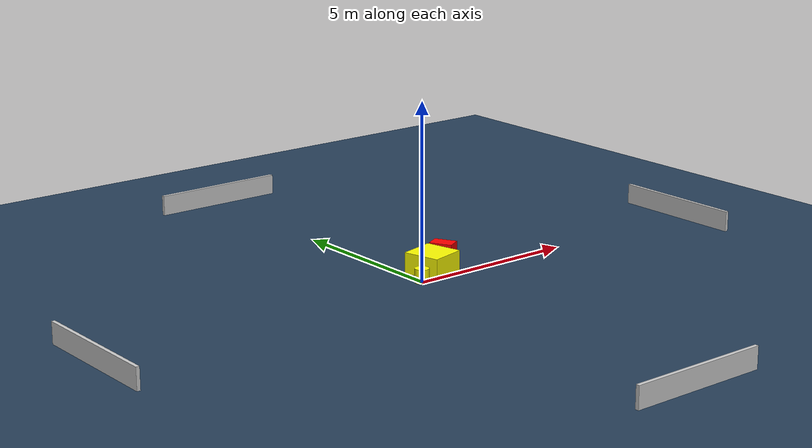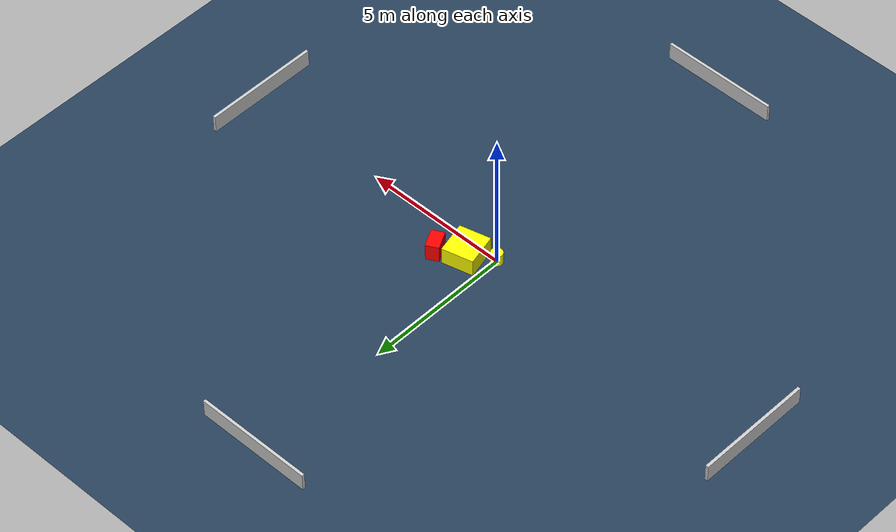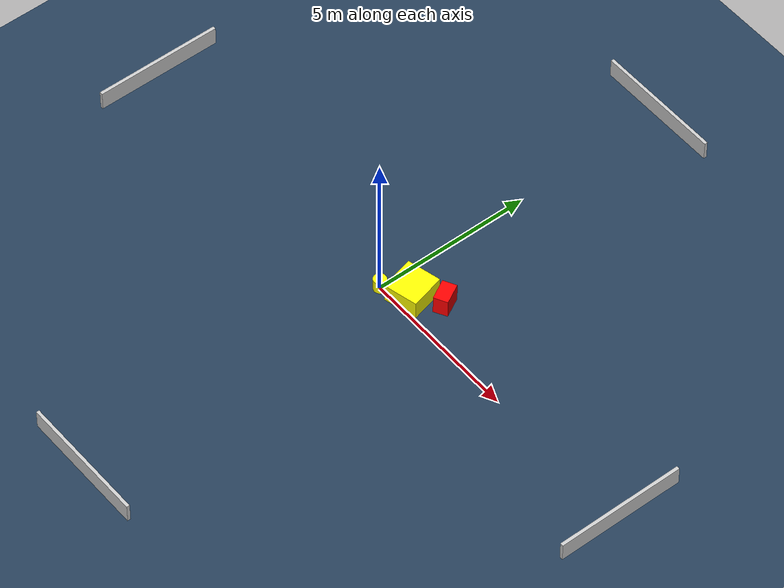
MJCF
<?xml version="1.0" ?>
<mujoco model="generated_environment">
  <option timestep="0.01" integrator="RK4" cone="elliptic"/>
  <default>
    <geom density="1"/>
  </default>
  <asset>
    <texture builtin="gradient" height="3072" name="skybox" rgb1="0.3 0.5 0.7" rgb2="0 0 0" type="skybox" width="512"/>
    <texture builtin="checker" height="300" name="groundplane" rgb1="0.2 0.3 0.4" rgb2="0.1 0.2 0.3" type="2d" width="300"/>
    <material name="groundplane" reflectance="0.2" texrepeat="5 5" texture="groundplane"/>
  </asset>
  <worldbody>
    <light dir="0 0 -1" directional="true" pos="0 0 1.5"/>
    <geom condim="3" friction="0.5 0.005 0.001" material="groundplane" name="floor" pos="0 0 0" size="0 0 0.05" type="plane"/>
    <body name="walls">
      <geom name="wall_1" condim="4" pos="-10.0 0.0 0.3" rgba="0.800000011920929 0.800000011920929 0.800000011920929 1.0" size="0.05 2.0 0.3" type="box"/>
      <geom name="wall_2" condim="4" pos="10.0 0.0 0.3" rgba="0.800000011920929 0.800000011920929 0.800000011920929 1.0" size="0.05 2.0 0.3" type="box"/>
      <geom name="wall_3" condim="4" pos="0.0 -10.0 0.3" rgba="0.800000011920929 0.800000011920929 0.800000011920929 1.0" size="2.0 0.05 0.3" type="box"/>
      <geom name="wall_4" condim="4" pos="0.0 10.0 0.3" rgba="0.800000011920929 0.800000011920929 0.800000011920929 1.0" size="2.0 0.05 0.3" type="box"/>
    </body>
    <body name="robot">
      <joint name="joint_x" type="slide" pos="0 0 0" axis="1 0 0"/>
      <joint name="joint_y" type="slide" pos="0 0 0" axis="0 1 0"/>
      <geom name="robot" type="cylinder" pos="0.0 0.0 0.2" size="0.2 0.2 0.0" mass="5.0" friction="1.0 0.005 0.0001" condim="4" rgba="1.0 1.0 0.0 1.0"/>
    </body>
    <body name="obstacle_1_movable">
      <geom name="obstacle_1_movable" condim="4" pos="0.7758107977534411 0.4986900212404524 0.3" euler="0 0 103.98710087702467" friction="0.0 0.005 0.001" rgba="1.0 1.0 0.0 1.0" size="0.5463577775114643 0.5332512317598126 0.3" type="box" mass="0.1"/>
      <joint type="free"/>
    </body>
    <body name="obstacle_2_static">
      <geom name="obstacle_2_static" condim="4" pos="1.5761705877468803 0.9961471471292824 0.3" euler="0 0 28.271862078124723" friction="0.0 0.005 0.001" rgba="1.0 0.0 0.0 1.0" size="0.21936042927327026 0.33080456865486074 0.3" type="box"/>
    </body>
  </worldbody>
  <actuator>
    <motor name="actuator_x" joint="joint_x" gear="1" ctrlrange="-1 1"/>
    <motor name="actuator_y" joint="joint_y" gear="1" ctrlrange="-1 1"/>
  </actuator>
</mujoco>
